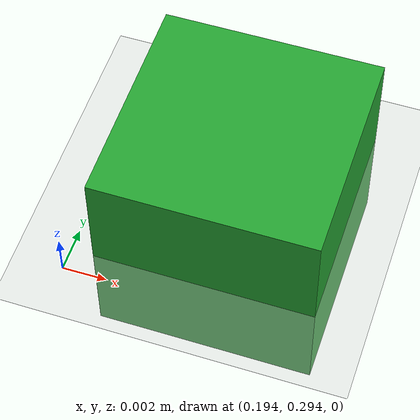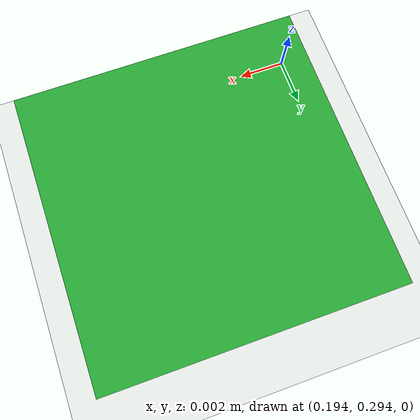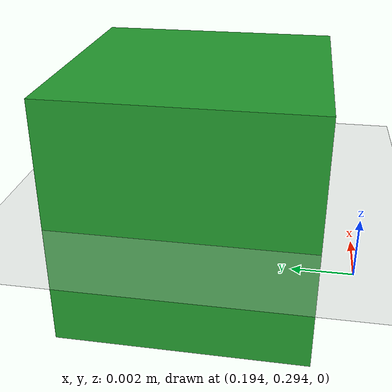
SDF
<?xml version="1.0" ?>
<sdf version="1.4">
  <world name="default">
    <include>
      <uri>model://ground_plane</uri>
    </include>

    <model name="my_model">
	  <pose>0.2 0.3 0 0 0 0</pose>
	  <static>false</static>
	    <link name="link">
	      <inertial>
		<mass>1.0</mass>
		<inertia>
		  <ixx>0.083</ixx>
		  <ixy>0.0</ixy>
		  <ixz>0.0</ixz>
		  <iyy>0.083</iyy>
		  <iyz>0.0</iyz>
		  <izz>0.083</izz>
		</inertia>
	      </inertial>
	      <collision name="collision">
		<geometry>
		  <box>
		    <size>0.01 0.01 0.01</size>
		  </box>
		</geometry>
	      </collision>
	      <visual name="visual">
		<geometry>
		  <box>
		    <size>0.01 0.01 0.01</size>
		  </box>
		</geometry>
		<material>
	          <script>
	            <uri>file://media/materials/scripts/gazebo.material</uri>
	            <name>Gazebo/Green</name>
	          </script>
        </material>
	      </visual>
	    </link>
    </model>

    <include>
      <uri>model://sun</uri>
    </include>
    <physics type="ode">
      <real_time_update_rate>1000.0</real_time_update_rate>
      <gravity>
	0.0 0.0 -9.81
      </gravity>
    </physics>
  </world>
</sdf>
